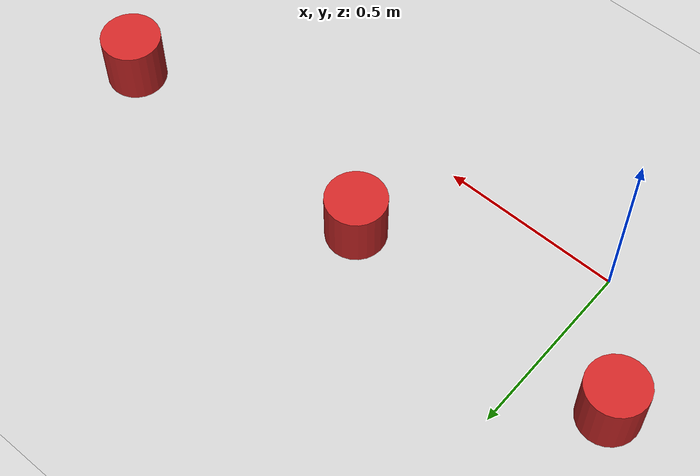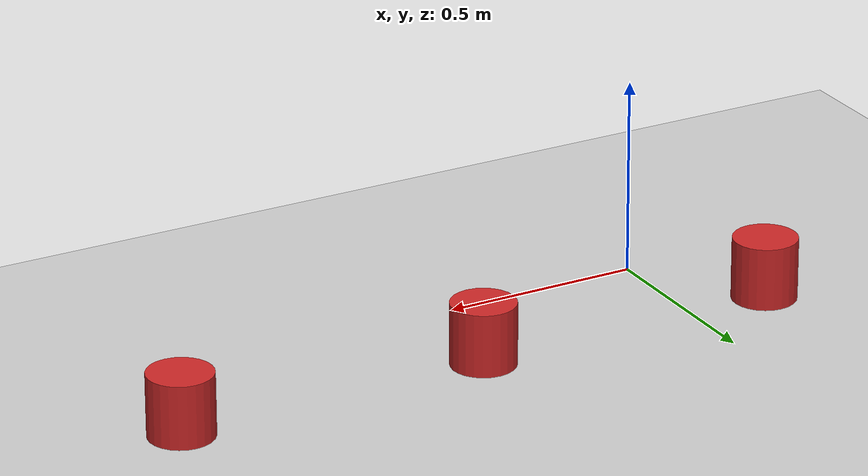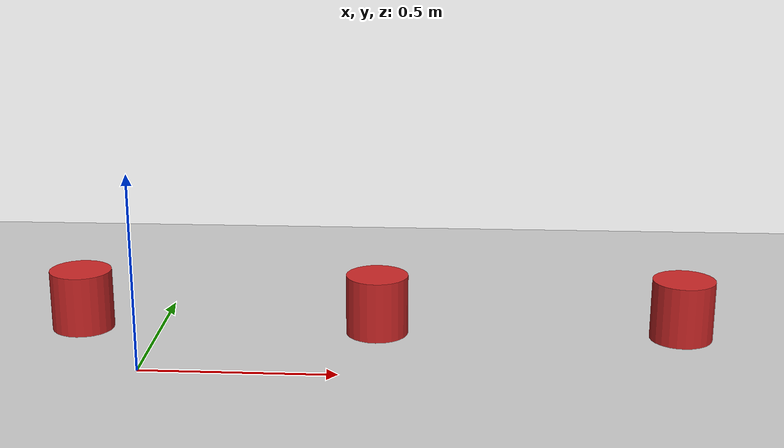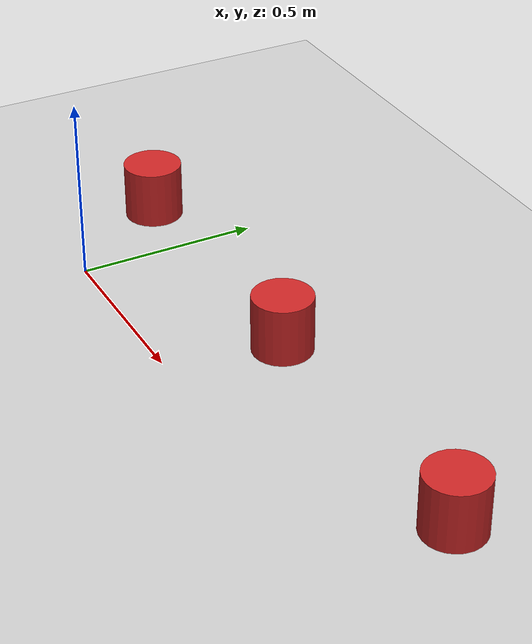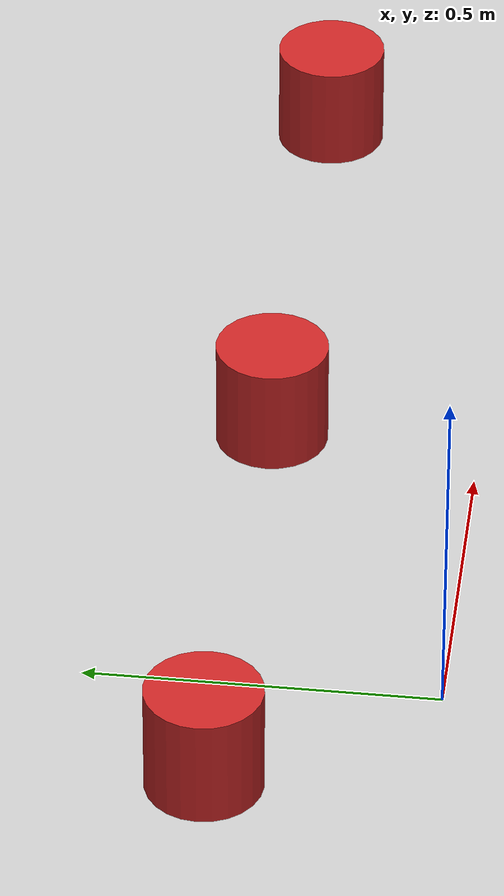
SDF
<sdf version="1.7">
 <world name="default">
  <light name="sun" type="directional">
   <pose>0 0 10 0 -0 0</pose>
   <diffuse>0.8 0.8 0.8 1</diffuse>
   <specular>0.2 0.2 0.2 1</specular>
   <attenuation>
    <range>1000</range>
    <constant>0.9</constant>
    <linear>0.01</linear>
    <quadratic>0.001</quadratic>
   </attenuation>
   <direction>-0.5 0.1 -0.9</direction>
   <spot><inner_angle>0</inner_angle><outer_angle>0</outer_angle><falloff>0</falloff></spot>
  </light>
  <model name="ground_plane">
   <static>1</static>
   <link name="link">
    <collision name="collision">
     <geometry><plane><normal>0 0 1</normal><size>100 100</size></plane></geometry>
     <surface>
      <contact><collide_bitmask>65535</collide_bitmask></contact>
      <friction><ode><mu>100</mu><mu2>50</mu2></ode></friction>
     </surface>
    </collision>
    <visual name="visual">
     <cast_shadows>0</cast_shadows>
     <geometry><plane><normal>0 0 1</normal><size>100 100</size></plane></geometry>
     <material>
      <script><uri>file://media/materials/scripts/gazebo.material</uri><name>Gazebo/Grey</name></script>
     </material>
    </visual>
   </link>
  </model>
  <gravity>0 0 -9.8</gravity>
  <magnetic_field>6e-06 2.3e-05 -4.2e-05</magnetic_field>
  <atmosphere type="adiabatic"/>
  <physics type="ode">
   <max_step_size>0.001</max_step_size>
   <real_time_factor>1</real_time_factor>
   <real_time_update_rate>1000</real_time_update_rate>
  </physics>
  <scene><ambient>0.4 0.4 0.4 1</ambient><background>0.7 0.7 0.7 1</background><shadows>1</shadows></scene>
  <audio><device>default</device></audio>
  <spherical_coordinates>
   <surface_model>EARTH_WGS84</surface_model>
   <latitude_deg>0</latitude_deg>
   <longitude_deg>0</longitude_deg>
   <elevation>0</elevation>
   <heading_deg>0</heading_deg>
  </spherical_coordinates>
  <model name="2obstacles">
   <static>1</static>
   <link name="obstacle_1">
    <inertial>
     <mass>1</mass>
     <inertia>
      <ixx>1.73831e-05</ixx>
      <ixy>0</ixy>
      <ixz>0</ixz>
      <iyy>1.73831e-05</iyy>
      <iyz>0</iyz>
      <izz>1.4913e-05</izz>
     </inertia>
    </inertial>
    <pose>-0.59 -0.01 0 0 0 0</pose>
    <visual name="visual">
     <geometry><cylinder><radius>0.0820934</radius><length>0.16406</length></cylinder></geometry>
     <material>
      <lighting>1</lighting>
      <script><uri>file://media/materials/scripts/gazebo.material</uri><name>Gazebo/Red</name></script>
      <shader type="pixel"><normal_map>__default__</normal_map></shader>
      <ambient>1 0 0 1</ambient>
      <diffuse>1 0 0 1</diffuse>
      <specular>0.1 0.1 0.1 1</specular>
      <emissive>0 0 0 1</emissive>
     </material>
    </visual>
    <collision name="collision">
     <geometry><cylinder><radius>0.082093</radius><length>0.16406</length></cylinder></geometry>
     <surface>
      <friction>
       <ode><mu>1</mu><mu2>1</mu2><fdir1>0 0 0</fdir1><slip1>0</slip1><slip2>0</slip2></ode>
       <torsional>
        <coefficient>1</coefficient>
        <patch_radius>0</patch_radius>
        <surface_radius>0</surface_radius>
        <use_patch_radius>1</use_patch_radius>
        <ode><slip>0</slip></ode>
       </torsional>
      </friction>
      <bounce><restitution_coefficient>0</restitution_coefficient><threshold>1e+06</threshold></bounce>
      <contact>
       <collide_without_contact>0</collide_without_contact>
       <collide_without_contact_bitmask>1</collide_without_contact_bitmask>
       <collide_bitmask>1</collide_bitmask>
       <ode>
        <soft_cfm>0</soft_cfm>
        <soft_erp>0.2</soft_erp>
        <kp>1e+13</kp>
        <kd>1</kd>
        <max_vel>0.01</max_vel>
        <min_depth>0</min_depth>
       </ode>
       <bullet>
        <split_impulse>1</split_impulse>
        <split_impulse_penetration_threshold>-0.01</split_impulse_penetration_threshold>
        <soft_cfm>0</soft_cfm>
        <soft_erp>0.2</soft_erp>
        <kp>1e+13</kp>
        <kd>1</kd>
       </bullet>
      </contact>
     </surface>
    </collision>
   </link>
   <link name="obstacle_2">
    <inertial>
     <mass>0.00442567</mass>
     <inertia>
      <ixx>1.73831e-05</ixx>
      <ixy>0</ixy>
      <ixz>0</ixz>
      <iyy>1.73831e-05</iyy>
      <iyz>0</iyz>
      <izz>1.4913e-05</izz>
     </inertia>
    </inertial>
    <pose>0.2 -0.01 0 0 -0 0</pose>
    <visual name="visual">
     <geometry><cylinder><radius>0.0820934</radius><length>0.16406</length></cylinder></geometry>
     <material>
      <lighting>1</lighting>
      <script><uri>file://media/materials/scripts/gazebo.material</uri><name>Gazebo/Red</name></script>
      <shader type="pixel"><normal_map>__default__</normal_map></shader>
      <ambient>1 0 0 1</ambient>
      <diffuse>1 0 0 1</diffuse>
      <specular>0.1 0.1 0.1 1</specular>
      <emissive>0 0 0 1</emissive>
     </material>
    </visual>
    <collision name="collision">
     <geometry><cylinder><radius>0.082093</radius><length>0.16406</length></cylinder></geometry>
     <surface>
      <friction>
       <ode><mu>1</mu><mu2>1</mu2><fdir1>0 0 0</fdir1><slip1>0</slip1><slip2>0</slip2></ode>
       <torsional>
        <coefficient>1</coefficient>
        <patch_radius>0</patch_radius>
        <surface_radius>0</surface_radius>
        <use_patch_radius>1</use_patch_radius>
        <ode><slip>0</slip></ode>
       </torsional>
      </friction>
      <bounce><restitution_coefficient>0</restitution_coefficient><threshold>1e+06</threshold></bounce>
      <contact>
       <collide_without_contact>0</collide_without_contact>
       <collide_without_contact_bitmask>1</collide_without_contact_bitmask>
       <collide_bitmask>1</collide_bitmask>
       <ode>
        <soft_cfm>0</soft_cfm>
        <soft_erp>0.2</soft_erp>
        <kp>1e+13</kp>
        <kd>1</kd>
        <max_vel>0.01</max_vel>
        <min_depth>0</min_depth>
       </ode>
       <bullet>
        <split_impulse>1</split_impulse>
        <split_impulse_penetration_threshold>-0.01</split_impulse_penetration_threshold>
        <soft_cfm>0</soft_cfm>
        <soft_erp>0.2</soft_erp>
        <kp>1e+13</kp>
        <kd>1</kd>
       </bullet>
      </contact>
     </surface>
    </collision>
   </link>
   <link name="obstacle_3">
    <inertial>
     <mass>0.00442567</mass>
     <inertia>
      <ixx>1.73831e-05</ixx>
      <ixy>0</ixy>
      <ixz>0</ixz>
      <iyy>1.73831e-05</iyy>
      <iyz>0</iyz>
      <izz>1.4913e-05</izz>
     </inertia>
    </inertial>
    <pose>1.0 -0.01 0 0 -0 0</pose>
    <visual name="visual">
     <geometry><cylinder><radius>0.0820934</radius><length>0.16406</length></cylinder></geometry>
     <material>
      <lighting>1</lighting>
      <script><uri>file://media/materials/scripts/gazebo.material</uri><name>Gazebo/Red</name></script>
      <shader type="pixel"><normal_map>__default__</normal_map></shader>
      <ambient>1 0 0 1</ambient>
      <diffuse>1 0 0 1</diffuse>
      <specular>0.1 0.1 0.1 1</specular>
      <emissive>0 0 0 1</emissive>
     </material>
    </visual>
    <collision name="collision">
     <geometry><cylinder><radius>0.082093</radius><length>0.16406</length></cylinder></geometry>
     <surface>
      <friction>
       <ode><mu>1</mu><mu2>1</mu2><fdir1>0 0 0</fdir1><slip1>0</slip1><slip2>0</slip2></ode>
       <torsional>
        <coefficient>1</coefficient>
        <patch_radius>0</patch_radius>
        <surface_radius>0</surface_radius>
        <use_patch_radius>1</use_patch_radius>
        <ode><slip>0</slip></ode>
       </torsional>
      </friction>
      <bounce><restitution_coefficient>0</restitution_coefficient><threshold>1e+06</threshold></bounce>
      <contact>
       <collide_without_contact>0</collide_without_contact>
       <collide_without_contact_bitmask>1</collide_without_contact_bitmask>
       <collide_bitmask>1</collide_bitmask>
       <ode>
        <soft_cfm>0</soft_cfm>
        <soft_erp>0.2</soft_erp>
        <kp>1e+13</kp>
        <kd>1</kd>
        <max_vel>0.01</max_vel>
        <min_depth>0</min_depth>
       </ode>
       <bullet>
        <split_impulse>1</split_impulse>
        <split_impulse_penetration_threshold>-0.01</split_impulse_penetration_threshold>
        <soft_cfm>0</soft_cfm>
        <soft_erp>0.2</soft_erp>
        <kp>1e+13</kp>
        <kd>1</kd>
       </bullet>
      </contact>
     </surface>
    </collision>
   </link>
   <static>1</static>
   <pose>0.379904 0.313177 0.077132 0 -0 0</pose>
  </model>
 </world>
</sdf>
